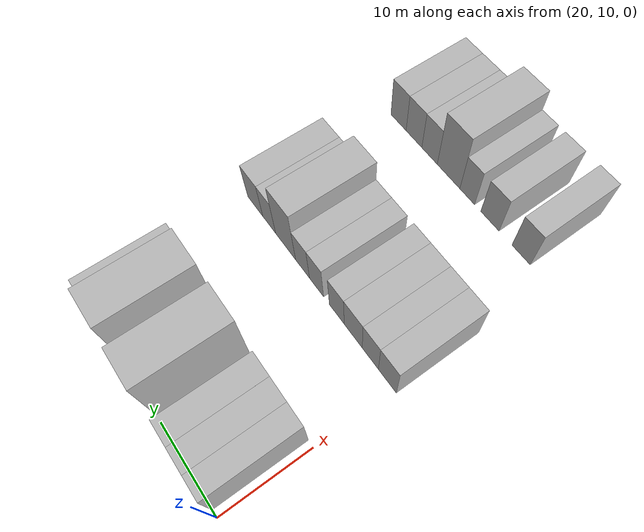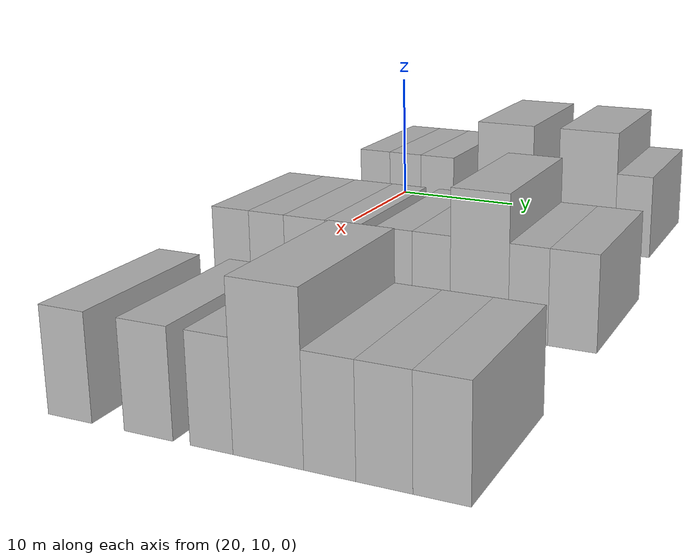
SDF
<sdf version="1.6">
 <world name="default">
  <model name="building_60">
   <static>1</static>
   <pose>25.0000 12.0577 0 0.000000 0.000000 0.000000</pose>
   <link name="link">
    <pose>0 0 3.00 0 0 0</pose>
    <collision name="collision"><geometry><box><size>10.0000 2.5369 6.0000</size></box></geometry></collision>
    <visual name="visual">
     <cast_shadows>0</cast_shadows>
     <geometry><box><size>10.0000 2.5369 6.0000</size></box></geometry>
     <material>
      <script>
       <uri>model://HANNAS_wall/materials/scripts</uri>
       <uri>model://HANNAS_wall/materials/textures</uri>
       <name>vrc/HANNAS_wall</name>
      </script>
     </material>
    </visual>
   </link>
  </model>
  <model name="building_61">
   <static>1</static>
   <pose>25.0000 14.6599 0 0.000000 0.000000 0.000000</pose>
   <link name="link">
    <pose>0 0 3.00 0 0 0</pose>
    <collision name="collision"><geometry><box><size>10.0000 2.6675 6.0000</size></box></geometry></collision>
    <visual name="visual">
     <cast_shadows>0</cast_shadows>
     <geometry><box><size>10.0000 2.6675 6.0000</size></box></geometry>
     <material>
      <script>
       <uri>model://HANNAS_wall/materials/scripts</uri>
       <uri>model://HANNAS_wall/materials/textures</uri>
       <name>vrc/HANNAS_wall</name>
      </script>
     </material>
    </visual>
   </link>
  </model>
  <model name="building_62">
   <static>1</static>
   <pose>25.0000 17.3658 0 0.000000 0.000000 0.000000</pose>
   <link name="link">
    <pose>0 0 3.00 0 0 0</pose>
    <collision name="collision"><geometry><box><size>10.0000 2.7442 6.0000</size></box></geometry></collision>
    <visual name="visual">
     <cast_shadows>0</cast_shadows>
     <geometry><box><size>10.0000 2.7442 6.0000</size></box></geometry>
     <material>
      <script>
       <uri>model://HANNAS_wall/materials/scripts</uri>
       <uri>model://HANNAS_wall/materials/textures</uri>
       <name>vrc/HANNAS_wall</name>
      </script>
     </material>
    </visual>
   </link>
  </model>
  <model name="building_63">
   <static>1</static>
   <pose>25.0000 22.9496 0 0.000000 0.000000 0.000000</pose>
   <link name="link">
    <pose>0 0 4.50 0 0 0</pose>
    <collision name="collision"><geometry><box><size>10.0000 4.4235 9.0000</size></box></geometry></collision>
    <visual name="visual">
     <cast_shadows>0</cast_shadows>
     <geometry><box><size>10.0000 4.4235 9.0000</size></box></geometry>
     <material>
      <script>
       <uri>model://HANNAS_wall/materials/scripts</uri>
       <uri>model://HANNAS_wall/materials/textures</uri>
       <name>vrc/HANNAS_wall</name>
      </script>
     </material>
    </visual>
   </link>
  </model>
  <model name="building_64">
   <static>1</static>
   <pose>25.0000 29.3589 0 0.000000 0.000000 0.000000</pose>
   <link name="link">
    <pose>0 0 4.50 0 0 0</pose>
    <collision name="collision"><geometry><box><size>10.0000 4.3949 9.0000</size></box></geometry></collision>
    <visual name="visual">
     <cast_shadows>0</cast_shadows>
     <geometry><box><size>10.0000 4.3949 9.0000</size></box></geometry>
     <material>
      <script>
       <uri>model://HANNAS_wall/materials/scripts</uri>
       <uri>model://HANNAS_wall/materials/textures</uri>
       <name>vrc/HANNAS_wall</name>
      </script>
     </material>
    </visual>
   </link>
  </model>
  <model name="building_65">
   <static>1</static>
   <pose>25.0000 32.8675 0 0.000000 0.000000 0.000000</pose>
   <link name="link">
    <pose>0 0 3.00 0 0 0</pose>
    <collision name="collision"><geometry><box><size>10.0000 2.6224 6.0000</size></box></geometry></collision>
    <visual name="visual">
     <cast_shadows>0</cast_shadows>
     <geometry><box><size>10.0000 2.6224 6.0000</size></box></geometry>
     <material>
      <script>
       <uri>model://HANNAS_wall/materials/scripts</uri>
       <uri>model://HANNAS_wall/materials/textures</uri>
       <name>vrc/HANNAS_wall</name>
      </script>
     </material>
    </visual>
   </link>
  </model>
  <model name="building_180">
   <static>1</static>
   <pose>44.0000 10.9340 0 0.000000 0.000000 0.000000</pose>
   <link name="link">
    <pose>0 0 3.00 0 0 0</pose>
    <collision name="collision"><geometry><box><size>10.0000 2.7756 6.0000</size></box></geometry></collision>
    <visual name="visual">
     <cast_shadows>0</cast_shadows>
     <geometry><box><size>10.0000 2.7756 6.0000</size></box></geometry>
     <material>
      <script>
       <uri>model://HANNAS_wall/materials/scripts</uri>
       <uri>model://HANNAS_wall/materials/textures</uri>
       <name>vrc/HANNAS_wall</name>
      </script>
     </material>
    </visual>
   </link>
  </model>
  <model name="building_181">
   <static>1</static>
   <pose>44.0000 13.6160 0 0.000000 0.000000 0.000000</pose>
   <link name="link">
    <pose>0 0 3.00 0 0 0</pose>
    <collision name="collision"><geometry><box><size>10.0000 2.5884 6.0000</size></box></geometry></collision>
    <visual name="visual">
     <cast_shadows>0</cast_shadows>
     <geometry><box><size>10.0000 2.5884 6.0000</size></box></geometry>
     <material>
      <script>
       <uri>model://HANNAS_wall/materials/scripts</uri>
       <uri>model://HANNAS_wall/materials/textures</uri>
       <name>vrc/HANNAS_wall</name>
      </script>
     </material>
    </visual>
   </link>
  </model>
  <model name="building_182">
   <static>1</static>
   <pose>44.0000 16.3873 0 0.000000 0.000000 0.000000</pose>
   <link name="link">
    <pose>0 0 3.00 0 0 0</pose>
    <collision name="collision"><geometry><box><size>10.0000 2.9542 6.0000</size></box></geometry></collision>
    <visual name="visual">
     <cast_shadows>0</cast_shadows>
     <geometry><box><size>10.0000 2.9542 6.0000</size></box></geometry>
     <material>
      <script>
       <uri>model://HANNAS_wall/materials/scripts</uri>
       <uri>model://HANNAS_wall/materials/textures</uri>
       <name>vrc/HANNAS_wall</name>
      </script>
     </material>
    </visual>
   </link>
  </model>
  <model name="building_183">
   <static>1</static>
   <pose>44.0000 19.1311 0 0.000000 0.000000 0.000000</pose>
   <link name="link">
    <pose>0 0 3.00 0 0 0</pose>
    <collision name="collision"><geometry><box><size>10.0000 2.5336 6.0000</size></box></geometry></collision>
    <visual name="visual">
     <cast_shadows>0</cast_shadows>
     <geometry><box><size>10.0000 2.5336 6.0000</size></box></geometry>
     <material>
      <script>
       <uri>model://HANNAS_wall/materials/scripts</uri>
       <uri>model://HANNAS_wall/materials/textures</uri>
       <name>vrc/HANNAS_wall</name>
      </script>
     </material>
    </visual>
   </link>
  </model>
  <model name="building_184">
   <static>1</static>
   <pose>44.0000 22.6398 0 0.000000 0.000000 0.000000</pose>
   <link name="link">
    <pose>0 0 3.00 0 0 0</pose>
    <collision name="collision"><geometry><box><size>10.0000 2.4838 6.0000</size></box></geometry></collision>
    <visual name="visual">
     <cast_shadows>0</cast_shadows>
     <geometry><box><size>10.0000 2.4838 6.0000</size></box></geometry>
     <material>
      <script>
       <uri>model://HANNAS_wall/materials/scripts</uri>
       <uri>model://HANNAS_wall/materials/textures</uri>
       <name>vrc/HANNAS_wall</name>
      </script>
     </material>
    </visual>
   </link>
  </model>
  <model name="building_185">
   <static>1</static>
   <pose>44.0000 25.1430 0 0.000000 0.000000 0.000000</pose>
   <link name="link">
    <pose>0 0 3.00 0 0 0</pose>
    <collision name="collision"><geometry><box><size>10.0000 2.5226 6.0000</size></box></geometry></collision>
    <visual name="visual">
     <cast_shadows>0</cast_shadows>
     <geometry><box><size>10.0000 2.5226 6.0000</size></box></geometry>
     <material>
      <script>
       <uri>model://HANNAS_wall/materials/scripts</uri>
       <uri>model://HANNAS_wall/materials/textures</uri>
       <name>vrc/HANNAS_wall</name>
      </script>
     </material>
    </visual>
   </link>
  </model>
  <model name="building_186">
   <static>1</static>
   <pose>44.0000 28.2769 0 0.000000 0.000000 0.000000</pose>
   <link name="link">
    <pose>0 0 4.50 0 0 0</pose>
    <collision name="collision"><geometry><box><size>10.0000 3.7451 9.0000</size></box></geometry></collision>
    <visual name="visual">
     <cast_shadows>0</cast_shadows>
     <geometry><box><size>10.0000 3.7451 9.0000</size></box></geometry>
     <material>
      <script>
       <uri>model://HANNAS_wall/materials/scripts</uri>
       <uri>model://HANNAS_wall/materials/textures</uri>
       <name>vrc/HANNAS_wall</name>
      </script>
     </material>
    </visual>
   </link>
  </model>
  <model name="building_187">
   <static>1</static>
   <pose>44.0000 31.3867 0 0.000000 0.000000 0.000000</pose>
   <link name="link">
    <pose>0 0 3.00 0 0 0</pose>
    <collision name="collision"><geometry><box><size>10.0000 2.4745 6.0000</size></box></geometry></collision>
    <visual name="visual">
     <cast_shadows>0</cast_shadows>
     <geometry><box><size>10.0000 2.4745 6.0000</size></box></geometry>
     <material>
      <script>
       <uri>model://HANNAS_wall/materials/scripts</uri>
       <uri>model://HANNAS_wall/materials/textures</uri>
       <name>vrc/HANNAS_wall</name>
      </script>
     </material>
    </visual>
   </link>
  </model>
  <model name="building_188">
   <static>1</static>
   <pose>44.0000 34.1231 0 0.000000 0.000000 0.000000</pose>
   <link name="link">
    <pose>0 0 3.00 0 0 0</pose>
    <collision name="collision"><geometry><box><size>10.0000 2.9984 6.0000</size></box></geometry></collision>
    <visual name="visual">
     <cast_shadows>0</cast_shadows>
     <geometry><box><size>10.0000 2.9984 6.0000</size></box></geometry>
     <material>
      <script>
       <uri>model://HANNAS_wall/materials/scripts</uri>
       <uri>model://HANNAS_wall/materials/textures</uri>
       <name>vrc/HANNAS_wall</name>
      </script>
     </material>
    </visual>
   </link>
  </model>
  <model name="building_301">
   <static>1</static>
   <pose>63.0000 13.3752 0 0.000000 0.000000 0.000000</pose>
   <link name="link">
    <pose>0 0 3.00 0 0 0</pose>
    <collision name="collision"><geometry><box><size>10.0000 2.7748 6.0000</size></box></geometry></collision>
    <visual name="visual">
     <cast_shadows>0</cast_shadows>
     <geometry><box><size>10.0000 2.7748 6.0000</size></box></geometry>
     <material>
      <script>
       <uri>model://HANNAS_wall/materials/scripts</uri>
       <uri>model://HANNAS_wall/materials/textures</uri>
       <name>vrc/HANNAS_wall</name>
      </script>
     </material>
    </visual>
   </link>
  </model>
  <model name="building_302">
   <static>1</static>
   <pose>63.0000 18.2213 0 0.000000 0.000000 0.000000</pose>
   <link name="link">
    <pose>0 0 3.00 0 0 0</pose>
    <collision name="collision"><geometry><box><size>10.0000 2.9175 6.0000</size></box></geometry></collision>
    <visual name="visual">
     <cast_shadows>0</cast_shadows>
     <geometry><box><size>10.0000 2.9175 6.0000</size></box></geometry>
     <material>
      <script>
       <uri>model://HANNAS_wall/materials/scripts</uri>
       <uri>model://HANNAS_wall/materials/textures</uri>
       <name>vrc/HANNAS_wall</name>
      </script>
     </material>
    </visual>
   </link>
  </model>
  <model name="building_303">
   <static>1</static>
   <pose>63.0000 21.9000 0 0.000000 0.000000 0.000000</pose>
   <link name="link">
    <pose>0 0 3.00 0 0 0</pose>
    <collision name="collision"><geometry><box><size>10.0000 2.4400 6.0000</size></box></geometry></collision>
    <visual name="visual">
     <cast_shadows>0</cast_shadows>
     <geometry><box><size>10.0000 2.4400 6.0000</size></box></geometry>
     <material>
      <script>
       <uri>model://HANNAS_wall/materials/scripts</uri>
       <uri>model://HANNAS_wall/materials/textures</uri>
       <name>vrc/HANNAS_wall</name>
      </script>
     </material>
    </visual>
   </link>
  </model>
  <model name="building_304">
   <static>1</static>
   <pose>63.0000 25.0480 0 0.000000 0.000000 0.000000</pose>
   <link name="link">
    <pose>0 0 4.50 0 0 0</pose>
    <collision name="collision"><geometry><box><size>10.0000 3.8561 9.0000</size></box></geometry></collision>
    <visual name="visual">
     <cast_shadows>0</cast_shadows>
     <geometry><box><size>10.0000 3.8561 9.0000</size></box></geometry>
     <material>
      <script>
       <uri>model://HANNAS_wall/materials/scripts</uri>
       <uri>model://HANNAS_wall/materials/textures</uri>
       <name>vrc/HANNAS_wall</name>
      </script>
     </material>
    </visual>
   </link>
  </model>
  <model name="building_305">
   <static>1</static>
   <pose>63.0000 28.3352 0 0.000000 0.000000 0.000000</pose>
   <link name="link">
    <pose>0 0 3.00 0 0 0</pose>
    <collision name="collision"><geometry><box><size>10.0000 2.7182 6.0000</size></box></geometry></collision>
    <visual name="visual">
     <cast_shadows>0</cast_shadows>
     <geometry><box><size>10.0000 2.7182 6.0000</size></box></geometry>
     <material>
      <script>
       <uri>model://HANNAS_wall/materials/scripts</uri>
       <uri>model://HANNAS_wall/materials/textures</uri>
       <name>vrc/HANNAS_wall</name>
      </script>
     </material>
    </visual>
   </link>
  </model>
  <model name="building_306">
   <static>1</static>
   <pose>63.0000 31.1186 0 0.000000 0.000000 0.000000</pose>
   <link name="link">
    <pose>0 0 3.00 0 0 0</pose>
    <collision name="collision"><geometry><box><size>10.0000 2.8488 6.0000</size></box></geometry></collision>
    <visual name="visual">
     <cast_shadows>0</cast_shadows>
     <geometry><box><size>10.0000 2.8488 6.0000</size></box></geometry>
     <material>
      <script>
       <uri>model://HANNAS_wall/materials/scripts</uri>
       <uri>model://HANNAS_wall/materials/textures</uri>
       <name>vrc/HANNAS_wall</name>
      </script>
     </material>
    </visual>
   </link>
  </model>
  <model name="building_307">
   <static>1</static>
   <pose>63.0000 33.9491 0 0.000000 0.000000 0.000000</pose>
   <link name="link">
    <pose>0 0 3.00 0 0 0</pose>
    <collision name="collision"><geometry><box><size>10.0000 2.8121 6.0000</size></box></geometry></collision>
    <visual name="visual">
     <cast_shadows>0</cast_shadows>
     <geometry><box><size>10.0000 2.8121 6.0000</size></box></geometry>
     <material>
      <script>
       <uri>model://HANNAS_wall/materials/scripts</uri>
       <uri>model://HANNAS_wall/materials/textures</uri>
       <name>vrc/HANNAS_wall</name>
      </script>
     </material>
    </visual>
   </link>
  </model>
 </world>
</sdf>
